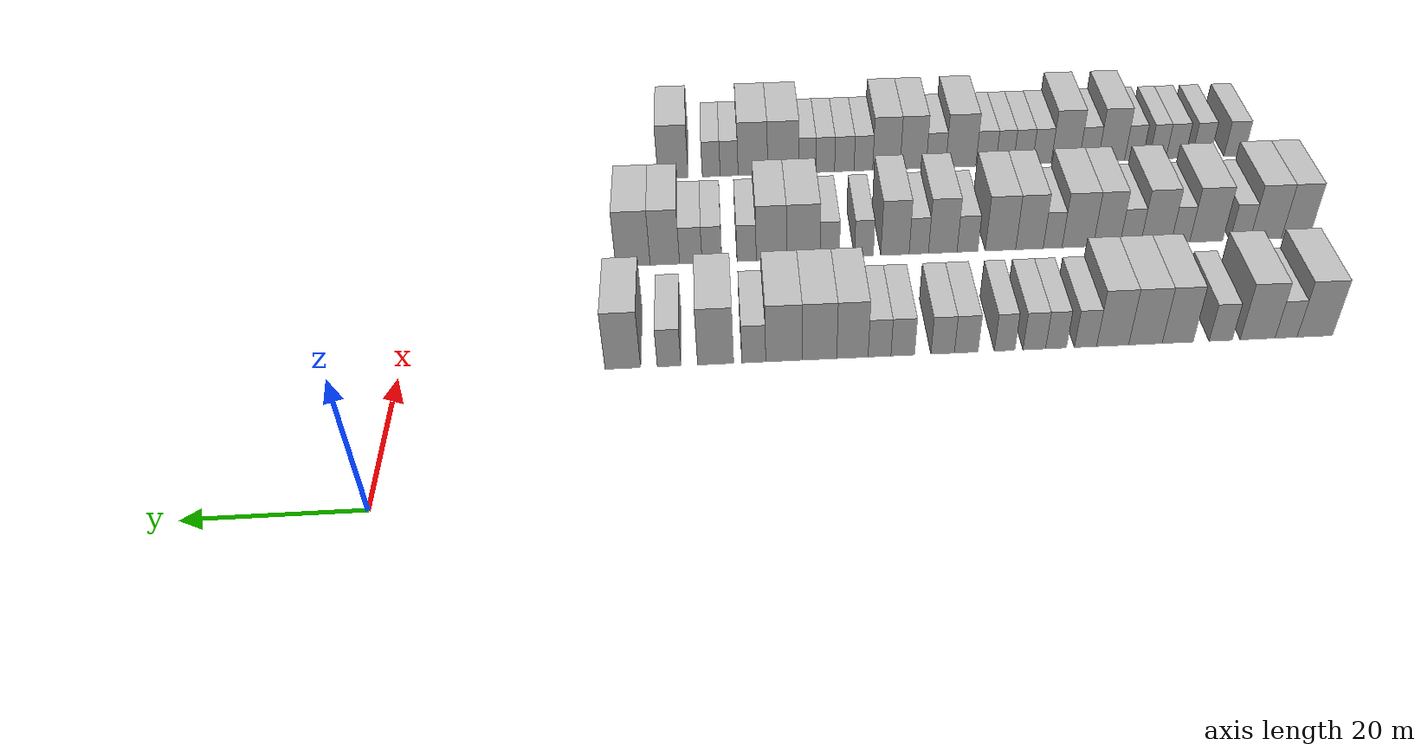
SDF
<sdf version="1.6">
 <world name="default">
  <model name="building_57">
   <static>1</static>
   <pose>25.0000 -111.5398 0 0.000000 0.000000 0.000000</pose>
   <link name="link">
    <pose>0 0 4.50 0 0 0</pose>
    <collision name="collision"><geometry><box><size>10.0000 4.4586 9.0000</size></box></geometry></collision>
    <visual name="visual">
     <cast_shadows>0</cast_shadows>
     <geometry><box><size>10.0000 4.4586 9.0000</size></box></geometry>
     <material>
      <script>
       <uri>model://HANNAS_wall/materials/scripts</uri>
       <uri>model://HANNAS_wall/materials/textures</uri>
       <name>vrc/HANNAS_wall</name>
      </script>
     </material>
    </visual>
   </link>
  </model>
  <model name="building_58">
   <static>1</static>
   <pose>25.0000 -107.9237 0 0.000000 0.000000 0.000000</pose>
   <link name="link">
    <pose>0 0 3.00 0 0 0</pose>
    <collision name="collision"><geometry><box><size>10.0000 2.7735 6.0000</size></box></geometry></collision>
    <visual name="visual">
     <cast_shadows>0</cast_shadows>
     <geometry><box><size>10.0000 2.7735 6.0000</size></box></geometry>
     <material>
      <script>
       <uri>model://HANNAS_wall/materials/scripts</uri>
       <uri>model://HANNAS_wall/materials/textures</uri>
       <name>vrc/HANNAS_wall</name>
      </script>
     </material>
    </visual>
   </link>
  </model>
  <model name="building_59">
   <static>1</static>
   <pose>25.0000 -104.3509 0 0.000000 0.000000 0.000000</pose>
   <link name="link">
    <pose>0 0 4.50 0 0 0</pose>
    <collision name="collision"><geometry><box><size>10.0000 4.3722 9.0000</size></box></geometry></collision>
    <visual name="visual">
     <cast_shadows>0</cast_shadows>
     <geometry><box><size>10.0000 4.3722 9.0000</size></box></geometry>
     <material>
      <script>
       <uri>model://HANNAS_wall/materials/scripts</uri>
       <uri>model://HANNAS_wall/materials/textures</uri>
       <name>vrc/HANNAS_wall</name>
      </script>
     </material>
    </visual>
   </link>
  </model>
  <model name="building_60">
   <static>1</static>
   <pose>25.0000 -99.7212 0 0.000000 0.000000 0.000000</pose>
   <link name="link">
    <pose>0 0 3.00 0 0 0</pose>
    <collision name="collision"><geometry><box><size>10.0000 2.8872 6.0000</size></box></geometry></collision>
    <visual name="visual">
     <cast_shadows>0</cast_shadows>
     <geometry><box><size>10.0000 2.8872 6.0000</size></box></geometry>
     <material>
      <script>
       <uri>model://HANNAS_wall/materials/scripts</uri>
       <uri>model://HANNAS_wall/materials/textures</uri>
       <name>vrc/HANNAS_wall</name>
      </script>
     </material>
    </visual>
   </link>
  </model>
  <model name="building_61">
   <static>1</static>
   <pose>25.0000 -94.3417 0 0.000000 0.000000 0.000000</pose>
   <link name="link">
    <pose>0 0 4.50 0 0 0</pose>
    <collision name="collision"><geometry><box><size>10.0000 3.8718 9.0000</size></box></geometry></collision>
    <visual name="visual">
     <cast_shadows>0</cast_shadows>
     <geometry><box><size>10.0000 3.8718 9.0000</size></box></geometry>
     <material>
      <script>
       <uri>model://HANNAS_wall/materials/scripts</uri>
       <uri>model://HANNAS_wall/materials/textures</uri>
       <name>vrc/HANNAS_wall</name>
      </script>
     </material>
    </visual>
   </link>
  </model>
  <model name="building_62">
   <static>1</static>
   <pose>25.0000 -90.3250 0 0.000000 0.000000 0.000000</pose>
   <link name="link">
    <pose>0 0 4.50 0 0 0</pose>
    <collision name="collision"><geometry><box><size>10.0000 4.1616 9.0000</size></box></geometry></collision>
    <visual name="visual">
     <cast_shadows>0</cast_shadows>
     <geometry><box><size>10.0000 4.1616 9.0000</size></box></geometry>
     <material>
      <script>
       <uri>model://HANNAS_wall/materials/scripts</uri>
       <uri>model://HANNAS_wall/materials/textures</uri>
       <name>vrc/HANNAS_wall</name>
      </script>
     </material>
    </visual>
   </link>
  </model>
  <model name="building_63">
   <static>1</static>
   <pose>25.0000 -86.2522 0 0.000000 0.000000 0.000000</pose>
   <link name="link">
    <pose>0 0 4.50 0 0 0</pose>
    <collision name="collision"><geometry><box><size>10.0000 3.9840 9.0000</size></box></geometry></collision>
    <visual name="visual">
     <cast_shadows>0</cast_shadows>
     <geometry><box><size>10.0000 3.9840 9.0000</size></box></geometry>
     <material>
      <script>
       <uri>model://HANNAS_wall/materials/scripts</uri>
       <uri>model://HANNAS_wall/materials/textures</uri>
       <name>vrc/HANNAS_wall</name>
      </script>
     </material>
    </visual>
   </link>
  </model>
  <model name="building_64">
   <static>1</static>
   <pose>25.0000 -82.8888 0 0.000000 0.000000 0.000000</pose>
   <link name="link">
    <pose>0 0 3.00 0 0 0</pose>
    <collision name="collision"><geometry><box><size>10.0000 2.7428 6.0000</size></box></geometry></collision>
    <visual name="visual">
     <cast_shadows>0</cast_shadows>
     <geometry><box><size>10.0000 2.7428 6.0000</size></box></geometry>
     <material>
      <script>
       <uri>model://HANNAS_wall/materials/scripts</uri>
       <uri>model://HANNAS_wall/materials/textures</uri>
       <name>vrc/HANNAS_wall</name>
      </script>
     </material>
    </visual>
   </link>
  </model>
  <model name="building_65">
   <static>1</static>
   <pose>25.0000 -79.2299 0 0.000000 0.000000 0.000000</pose>
   <link name="link">
    <pose>0 0 3.00 0 0 0</pose>
    <collision name="collision"><geometry><box><size>10.0000 2.5750 6.0000</size></box></geometry></collision>
    <visual name="visual">
     <cast_shadows>0</cast_shadows>
     <geometry><box><size>10.0000 2.5750 6.0000</size></box></geometry>
     <material>
      <script>
       <uri>model://HANNAS_wall/materials/scripts</uri>
       <uri>model://HANNAS_wall/materials/textures</uri>
       <name>vrc/HANNAS_wall</name>
      </script>
     </material>
    </visual>
   </link>
  </model>
  <model name="building_66">
   <static>1</static>
   <pose>25.0000 -76.5491 0 0.000000 0.000000 0.000000</pose>
   <link name="link">
    <pose>0 0 3.00 0 0 0</pose>
    <collision name="collision"><geometry><box><size>10.0000 2.7866 6.0000</size></box></geometry></collision>
    <visual name="visual">
     <cast_shadows>0</cast_shadows>
     <geometry><box><size>10.0000 2.7866 6.0000</size></box></geometry>
     <material>
      <script>
       <uri>model://HANNAS_wall/materials/scripts</uri>
       <uri>model://HANNAS_wall/materials/textures</uri>
       <name>vrc/HANNAS_wall</name>
      </script>
     </material>
    </visual>
   </link>
  </model>
  <model name="building_67">
   <static>1</static>
   <pose>25.0000 -72.8942 0 0.000000 0.000000 0.000000</pose>
   <link name="link">
    <pose>0 0 3.00 0 0 0</pose>
    <collision name="collision"><geometry><box><size>10.0000 2.5231 6.0000</size></box></geometry></collision>
    <visual name="visual">
     <cast_shadows>0</cast_shadows>
     <geometry><box><size>10.0000 2.5231 6.0000</size></box></geometry>
     <material>
      <script>
       <uri>model://HANNAS_wall/materials/scripts</uri>
       <uri>model://HANNAS_wall/materials/textures</uri>
       <name>vrc/HANNAS_wall</name>
      </script>
     </material>
    </visual>
   </link>
  </model>
  <model name="building_68">
   <static>1</static>
   <pose>25.0000 -68.1796 0 0.000000 0.000000 0.000000</pose>
   <link name="link">
    <pose>0 0 3.00 0 0 0</pose>
    <collision name="collision"><geometry><box><size>10.0000 2.9061 6.0000</size></box></geometry></collision>
    <visual name="visual">
     <cast_shadows>0</cast_shadows>
     <geometry><box><size>10.0000 2.9061 6.0000</size></box></geometry>
     <material>
      <script>
       <uri>model://HANNAS_wall/materials/scripts</uri>
       <uri>model://HANNAS_wall/materials/textures</uri>
       <name>vrc/HANNAS_wall</name>
      </script>
     </material>
    </visual>
   </link>
  </model>
  <model name="building_69">
   <static>1</static>
   <pose>25.0000 -65.2922 0 0.000000 0.000000 0.000000</pose>
   <link name="link">
    <pose>0 0 3.00 0 0 0</pose>
    <collision name="collision"><geometry><box><size>10.0000 2.8687 6.0000</size></box></geometry></collision>
    <visual name="visual">
     <cast_shadows>0</cast_shadows>
     <geometry><box><size>10.0000 2.8687 6.0000</size></box></geometry>
     <material>
      <script>
       <uri>model://HANNAS_wall/materials/scripts</uri>
       <uri>model://HANNAS_wall/materials/textures</uri>
       <name>vrc/HANNAS_wall</name>
      </script>
     </material>
    </visual>
   </link>
  </model>
  <model name="building_70">
   <static>1</static>
   <pose>25.0000 -60.4123 0 0.000000 0.000000 0.000000</pose>
   <link name="link">
    <pose>0 0 3.00 0 0 0</pose>
    <collision name="collision"><geometry><box><size>10.0000 2.8911 6.0000</size></box></geometry></collision>
    <visual name="visual">
     <cast_shadows>0</cast_shadows>
     <geometry><box><size>10.0000 2.8911 6.0000</size></box></geometry>
     <material>
      <script>
       <uri>model://HANNAS_wall/materials/scripts</uri>
       <uri>model://HANNAS_wall/materials/textures</uri>
       <name>vrc/HANNAS_wall</name>
      </script>
     </material>
    </visual>
   </link>
  </model>
  <model name="building_71">
   <static>1</static>
   <pose>25.0000 -57.5742 0 0.000000 0.000000 0.000000</pose>
   <link name="link">
    <pose>0 0 3.00 0 0 0</pose>
    <collision name="collision"><geometry><box><size>10.0000 2.7850 6.0000</size></box></geometry></collision>
    <visual name="visual">
     <cast_shadows>0</cast_shadows>
     <geometry><box><size>10.0000 2.7850 6.0000</size></box></geometry>
     <material>
      <script>
       <uri>model://HANNAS_wall/materials/scripts</uri>
       <uri>model://HANNAS_wall/materials/textures</uri>
       <name>vrc/HANNAS_wall</name>
      </script>
     </material>
    </visual>
   </link>
  </model>
  <model name="building_72">
   <static>1</static>
   <pose>25.0000 -54.2720 0 0.000000 0.000000 0.000000</pose>
   <link name="link">
    <pose>0 0 4.50 0 0 0</pose>
    <collision name="collision"><geometry><box><size>10.0000 3.8194 9.0000</size></box></geometry></collision>
    <visual name="visual">
     <cast_shadows>0</cast_shadows>
     <geometry><box><size>10.0000 3.8194 9.0000</size></box></geometry>
     <material>
      <script>
       <uri>model://HANNAS_wall/materials/scripts</uri>
       <uri>model://HANNAS_wall/materials/textures</uri>
       <name>vrc/HANNAS_wall</name>
      </script>
     </material>
    </visual>
   </link>
  </model>
  <model name="building_73">
   <static>1</static>
   <pose>25.0000 -50.2550 0 0.000000 0.000000 0.000000</pose>
   <link name="link">
    <pose>0 0 4.50 0 0 0</pose>
    <collision name="collision"><geometry><box><size>10.0000 4.2145 9.0000</size></box></geometry></collision>
    <visual name="visual">
     <cast_shadows>0</cast_shadows>
     <geometry><box><size>10.0000 4.2145 9.0000</size></box></geometry>
     <material>
      <script>
       <uri>model://HANNAS_wall/materials/scripts</uri>
       <uri>model://HANNAS_wall/materials/textures</uri>
       <name>vrc/HANNAS_wall</name>
      </script>
     </material>
    </visual>
   </link>
  </model>
  <model name="building_74">
   <static>1</static>
   <pose>25.0000 -45.9555 0 0.000000 0.000000 0.000000</pose>
   <link name="link">
    <pose>0 0 4.50 0 0 0</pose>
    <collision name="collision"><geometry><box><size>10.0000 4.3845 9.0000</size></box></geometry></collision>
    <visual name="visual">
     <cast_shadows>0</cast_shadows>
     <geometry><box><size>10.0000 4.3845 9.0000</size></box></geometry>
     <material>
      <script>
       <uri>model://HANNAS_wall/materials/scripts</uri>
       <uri>model://HANNAS_wall/materials/textures</uri>
       <name>vrc/HANNAS_wall</name>
      </script>
     </material>
    </visual>
   </link>
  </model>
  <model name="building_75">
   <static>1</static>
   <pose>25.0000 -42.3264 0 0.000000 0.000000 0.000000</pose>
   <link name="link">
    <pose>0 0 3.00 0 0 0</pose>
    <collision name="collision"><geometry><box><size>10.0000 2.8739 6.0000</size></box></geometry></collision>
    <visual name="visual">
     <cast_shadows>0</cast_shadows>
     <geometry><box><size>10.0000 2.8739 6.0000</size></box></geometry>
     <material>
      <script>
       <uri>model://HANNAS_wall/materials/scripts</uri>
       <uri>model://HANNAS_wall/materials/textures</uri>
       <name>vrc/HANNAS_wall</name>
      </script>
     </material>
    </visual>
   </link>
  </model>
  <model name="building_76">
   <static>1</static>
   <pose>25.0000 -37.7238 0 0.000000 0.000000 0.000000</pose>
   <link name="link">
    <pose>0 0 4.50 0 0 0</pose>
    <collision name="collision"><geometry><box><size>10.0000 4.3312 9.0000</size></box></geometry></collision>
    <visual name="visual">
     <cast_shadows>0</cast_shadows>
     <geometry><box><size>10.0000 4.3312 9.0000</size></box></geometry>
     <material>
      <script>
       <uri>model://HANNAS_wall/materials/scripts</uri>
       <uri>model://HANNAS_wall/materials/textures</uri>
       <name>vrc/HANNAS_wall</name>
      </script>
     </material>
    </visual>
   </link>
  </model>
  <model name="building_77">
   <static>1</static>
   <pose>25.0000 -32.1401 0 0.000000 0.000000 0.000000</pose>
   <link name="link">
    <pose>0 0 3.00 0 0 0</pose>
    <collision name="collision"><geometry><box><size>10.0000 2.8362 6.0000</size></box></geometry></collision>
    <visual name="visual">
     <cast_shadows>0</cast_shadows>
     <geometry><box><size>10.0000 2.8362 6.0000</size></box></geometry>
     <material>
      <script>
       <uri>model://HANNAS_wall/materials/scripts</uri>
       <uri>model://HANNAS_wall/materials/textures</uri>
       <name>vrc/HANNAS_wall</name>
      </script>
     </material>
    </visual>
   </link>
  </model>
  <model name="building_78">
   <static>1</static>
   <pose>25.0000 -26.5980 0 0.000000 0.000000 0.000000</pose>
   <link name="link">
    <pose>0 0 4.50 0 0 0</pose>
    <collision name="collision"><geometry><box><size>10.0000 4.2480 9.0000</size></box></geometry></collision>
    <visual name="visual">
     <cast_shadows>0</cast_shadows>
     <geometry><box><size>10.0000 4.2480 9.0000</size></box></geometry>
     <material>
      <script>
       <uri>model://HANNAS_wall/materials/scripts</uri>
       <uri>model://HANNAS_wall/materials/textures</uri>
       <name>vrc/HANNAS_wall</name>
      </script>
     </material>
    </visual>
   </link>
  </model>
  <model name="building_236">
   <static>1</static>
   <pose>44.0000 -115.9924 0 0.000000 0.000000 0.000000</pose>
   <link name="link">
    <pose>0 0 4.50 0 0 0</pose>
    <collision name="collision"><geometry><box><size>10.0000 3.8471 9.0000</size></box></geometry></collision>
    <visual name="visual">
     <cast_shadows>0</cast_shadows>
     <geometry><box><size>10.0000 3.8471 9.0000</size></box></geometry>
     <material>
      <script>
       <uri>model://HANNAS_wall/materials/scripts</uri>
       <uri>model://HANNAS_wall/materials/textures</uri>
       <name>vrc/HANNAS_wall</name>
      </script>
     </material>
    </visual>
   </link>
  </model>
  <model name="building_237">
   <static>1</static>
   <pose>44.0000 -111.9209 0 0.000000 0.000000 0.000000</pose>
   <link name="link">
    <pose>0 0 4.50 0 0 0</pose>
    <collision name="collision"><geometry><box><size>10.0000 4.2960 9.0000</size></box></geometry></collision>
    <visual name="visual">
     <cast_shadows>0</cast_shadows>
     <geometry><box><size>10.0000 4.2960 9.0000</size></box></geometry>
     <material>
      <script>
       <uri>model://HANNAS_wall/materials/scripts</uri>
       <uri>model://HANNAS_wall/materials/textures</uri>
       <name>vrc/HANNAS_wall</name>
      </script>
     </material>
    </visual>
   </link>
  </model>
  <model name="building_238">
   <static>1</static>
   <pose>44.0000 -108.3996 0 0.000000 0.000000 0.000000</pose>
   <link name="link">
    <pose>0 0 3.00 0 0 0</pose>
    <collision name="collision"><geometry><box><size>10.0000 2.7466 6.0000</size></box></geometry></collision>
    <visual name="visual">
     <cast_shadows>0</cast_shadows>
     <geometry><box><size>10.0000 2.7466 6.0000</size></box></geometry>
     <material>
      <script>
       <uri>model://HANNAS_wall/materials/scripts</uri>
       <uri>model://HANNAS_wall/materials/textures</uri>
       <name>vrc/HANNAS_wall</name>
      </script>
     </material>
    </visual>
   </link>
  </model>
  <model name="building_239">
   <static>1</static>
   <pose>44.0000 -103.7807 0 0.000000 0.000000 0.000000</pose>
   <link name="link">
    <pose>0 0 4.50 0 0 0</pose>
    <collision name="collision"><geometry><box><size>10.0000 4.4910 9.0000</size></box></geometry></collision>
    <visual name="visual">
     <cast_shadows>0</cast_shadows>
     <geometry><box><size>10.0000 4.4910 9.0000</size></box></geometry>
     <material>
      <script>
       <uri>model://HANNAS_wall/materials/scripts</uri>
       <uri>model://HANNAS_wall/materials/textures</uri>
       <name>vrc/HANNAS_wall</name>
      </script>
     </material>
    </visual>
   </link>
  </model>
  <model name="building_240">
   <static>1</static>
   <pose>44.0000 -100.2706 0 0.000000 0.000000 0.000000</pose>
   <link name="link">
    <pose>0 0 3.00 0 0 0</pose>
    <collision name="collision"><geometry><box><size>10.0000 2.5293 6.0000</size></box></geometry></collision>
    <visual name="visual">
     <cast_shadows>0</cast_shadows>
     <geometry><box><size>10.0000 2.5293 6.0000</size></box></geometry>
     <material>
      <script>
       <uri>model://HANNAS_wall/materials/scripts</uri>
       <uri>model://HANNAS_wall/materials/textures</uri>
       <name>vrc/HANNAS_wall</name>
      </script>
     </material>
    </visual>
   </link>
  </model>
  <model name="building_241">
   <static>1</static>
   <pose>44.0000 -96.9319 0 0.000000 0.000000 0.000000</pose>
   <link name="link">
    <pose>0 0 4.50 0 0 0</pose>
    <collision name="collision"><geometry><box><size>10.0000 4.1479 9.0000</size></box></geometry></collision>
    <visual name="visual">
     <cast_shadows>0</cast_shadows>
     <geometry><box><size>10.0000 4.1479 9.0000</size></box></geometry>
     <material>
      <script>
       <uri>model://HANNAS_wall/materials/scripts</uri>
       <uri>model://HANNAS_wall/materials/textures</uri>
       <name>vrc/HANNAS_wall</name>
      </script>
     </material>
    </visual>
   </link>
  </model>
  <model name="building_242">
   <static>1</static>
   <pose>44.0000 -93.4488 0 0.000000 0.000000 0.000000</pose>
   <link name="link">
    <pose>0 0 3.00 0 0 0</pose>
    <collision name="collision"><geometry><box><size>10.0000 2.8184 6.0000</size></box></geometry></collision>
    <visual name="visual">
     <cast_shadows>0</cast_shadows>
     <geometry><box><size>10.0000 2.8184 6.0000</size></box></geometry>
     <material>
      <script>
       <uri>model://HANNAS_wall/materials/scripts</uri>
       <uri>model://HANNAS_wall/materials/textures</uri>
       <name>vrc/HANNAS_wall</name>
      </script>
     </material>
    </visual>
   </link>
  </model>
  <model name="building_243">
   <static>1</static>
   <pose>44.0000 -90.2383 0 0.000000 0.000000 0.000000</pose>
   <link name="link">
    <pose>0 0 4.50 0 0 0</pose>
    <collision name="collision"><geometry><box><size>10.0000 3.6025 9.0000</size></box></geometry></collision>
    <visual name="visual">
     <cast_shadows>0</cast_shadows>
     <geometry><box><size>10.0000 3.6025 9.0000</size></box></geometry>
     <material>
      <script>
       <uri>model://HANNAS_wall/materials/scripts</uri>
       <uri>model://HANNAS_wall/materials/textures</uri>
       <name>vrc/HANNAS_wall</name>
      </script>
     </material>
    </visual>
   </link>
  </model>
  <model name="building_244">
   <static>1</static>
   <pose>44.0000 -86.3319 0 0.000000 0.000000 0.000000</pose>
   <link name="link">
    <pose>0 0 4.50 0 0 0</pose>
    <collision name="collision"><geometry><box><size>10.0000 4.2104 9.0000</size></box></geometry></collision>
    <visual name="visual">
     <cast_shadows>0</cast_shadows>
     <geometry><box><size>10.0000 4.2104 9.0000</size></box></geometry>
     <material>
      <script>
       <uri>model://HANNAS_wall/materials/scripts</uri>
       <uri>model://HANNAS_wall/materials/textures</uri>
       <name>vrc/HANNAS_wall</name>
      </script>
     </material>
    </visual>
   </link>
  </model>
  <model name="building_245">
   <static>1</static>
   <pose>44.0000 -82.9578 0 0.000000 0.000000 0.000000</pose>
   <link name="link">
    <pose>0 0 3.00 0 0 0</pose>
    <collision name="collision"><geometry><box><size>10.0000 2.5377 6.0000</size></box></geometry></collision>
    <visual name="visual">
     <cast_shadows>0</cast_shadows>
     <geometry><box><size>10.0000 2.5377 6.0000</size></box></geometry>
     <material>
      <script>
       <uri>model://HANNAS_wall/materials/scripts</uri>
       <uri>model://HANNAS_wall/materials/textures</uri>
       <name>vrc/HANNAS_wall</name>
      </script>
     </material>
    </visual>
   </link>
  </model>
  <model name="building_246">
   <static>1</static>
   <pose>44.0000 -79.8352 0 0.000000 0.000000 0.000000</pose>
   <link name="link">
    <pose>0 0 4.50 0 0 0</pose>
    <collision name="collision"><geometry><box><size>10.0000 3.7076 9.0000</size></box></geometry></collision>
    <visual name="visual">
     <cast_shadows>0</cast_shadows>
     <geometry><box><size>10.0000 3.7076 9.0000</size></box></geometry>
     <material>
      <script>
       <uri>model://HANNAS_wall/materials/scripts</uri>
       <uri>model://HANNAS_wall/materials/textures</uri>
       <name>vrc/HANNAS_wall</name>
      </script>
     </material>
    </visual>
   </link>
  </model>
  <model name="building_247">
   <static>1</static>
   <pose>44.0000 -75.9427 0 0.000000 0.000000 0.000000</pose>
   <link name="link">
    <pose>0 0 4.50 0 0 0</pose>
    <collision name="collision"><geometry><box><size>10.0000 4.0775 9.0000</size></box></geometry></collision>
    <visual name="visual">
     <cast_shadows>0</cast_shadows>
     <geometry><box><size>10.0000 4.0775 9.0000</size></box></geometry>
     <material>
      <script>
       <uri>model://HANNAS_wall/materials/scripts</uri>
       <uri>model://HANNAS_wall/materials/textures</uri>
       <name>vrc/HANNAS_wall</name>
      </script>
     </material>
    </visual>
   </link>
  </model>
  <model name="building_248">
   <static>1</static>
   <pose>44.0000 -71.5139 0 0.000000 0.000000 0.000000</pose>
   <link name="link">
    <pose>0 0 3.00 0 0 0</pose>
    <collision name="collision"><geometry><box><size>10.0000 2.7801 6.0000</size></box></geometry></collision>
    <visual name="visual">
     <cast_shadows>0</cast_shadows>
     <geometry><box><size>10.0000 2.7801 6.0000</size></box></geometry>
     <material>
      <script>
       <uri>model://HANNAS_wall/materials/scripts</uri>
       <uri>model://HANNAS_wall/materials/textures</uri>
       <name>vrc/HANNAS_wall</name>
      </script>
     </material>
    </visual>
   </link>
  </model>
  <model name="building_249">
   <static>1</static>
   <pose>44.0000 -68.2118 0 0.000000 0.000000 0.000000</pose>
   <link name="link">
    <pose>0 0 4.50 0 0 0</pose>
    <collision name="collision"><geometry><box><size>10.0000 3.8239 9.0000</size></box></geometry></collision>
    <visual name="visual">
     <cast_shadows>0</cast_shadows>
     <geometry><box><size>10.0000 3.8239 9.0000</size></box></geometry>
     <material>
      <script>
       <uri>model://HANNAS_wall/materials/scripts</uri>
       <uri>model://HANNAS_wall/materials/textures</uri>
       <name>vrc/HANNAS_wall</name>
      </script>
     </material>
    </visual>
   </link>
  </model>
  <model name="building_250">
   <static>1</static>
   <pose>44.0000 -65.0144 0 0.000000 0.000000 0.000000</pose>
   <link name="link">
    <pose>0 0 3.00 0 0 0</pose>
    <collision name="collision"><geometry><box><size>10.0000 2.5710 6.0000</size></box></geometry></collision>
    <visual name="visual">
     <cast_shadows>0</cast_shadows>
     <geometry><box><size>10.0000 2.5710 6.0000</size></box></geometry>
     <material>
      <script>
       <uri>model://HANNAS_wall/materials/scripts</uri>
       <uri>model://HANNAS_wall/materials/textures</uri>
       <name>vrc/HANNAS_wall</name>
      </script>
     </material>
    </visual>
   </link>
  </model>
  <model name="building_251">
   <static>1</static>
   <pose>44.0000 -61.8440 0 0.000000 0.000000 0.000000</pose>
   <link name="link">
    <pose>0 0 4.50 0 0 0</pose>
    <collision name="collision"><geometry><box><size>10.0000 3.7696 9.0000</size></box></geometry></collision>
    <visual name="visual">
     <cast_shadows>0</cast_shadows>
     <geometry><box><size>10.0000 3.7696 9.0000</size></box></geometry>
     <material>
      <script>
       <uri>model://HANNAS_wall/materials/scripts</uri>
       <uri>model://HANNAS_wall/materials/textures</uri>
       <name>vrc/HANNAS_wall</name>
      </script>
     </material>
    </visual>
   </link>
  </model>
  <model name="building_252">
   <static>1</static>
   <pose>44.0000 -57.7068 0 0.000000 0.000000 0.000000</pose>
   <link name="link">
    <pose>0 0 3.00 0 0 0</pose>
    <collision name="collision"><geometry><box><size>10.0000 2.5049 6.0000</size></box></geometry></collision>
    <visual name="visual">
     <cast_shadows>0</cast_shadows>
     <geometry><box><size>10.0000 2.5049 6.0000</size></box></geometry>
     <material>
      <script>
       <uri>model://HANNAS_wall/materials/scripts</uri>
       <uri>model://HANNAS_wall/materials/textures</uri>
       <name>vrc/HANNAS_wall</name>
      </script>
     </material>
    </visual>
   </link>
  </model>
  <model name="building_253">
   <static>1</static>
   <pose>44.0000 -53.1735 0 0.000000 0.000000 0.000000</pose>
   <link name="link">
    <pose>0 0 3.00 0 0 0</pose>
    <collision name="collision"><geometry><box><size>10.0000 2.5617 6.0000</size></box></geometry></collision>
    <visual name="visual">
     <cast_shadows>0</cast_shadows>
     <geometry><box><size>10.0000 2.5617 6.0000</size></box></geometry>
     <material>
      <script>
       <uri>model://HANNAS_wall/materials/scripts</uri>
       <uri>model://HANNAS_wall/materials/textures</uri>
       <name>vrc/HANNAS_wall</name>
      </script>
     </material>
    </visual>
   </link>
  </model>
  <model name="building_254">
   <static>1</static>
   <pose>44.0000 -49.6781 0 0.000000 0.000000 0.000000</pose>
   <link name="link">
    <pose>0 0 4.50 0 0 0</pose>
    <collision name="collision"><geometry><box><size>10.0000 4.4290 9.0000</size></box></geometry></collision>
    <visual name="visual">
     <cast_shadows>0</cast_shadows>
     <geometry><box><size>10.0000 4.4290 9.0000</size></box></geometry>
     <material>
      <script>
       <uri>model://HANNAS_wall/materials/scripts</uri>
       <uri>model://HANNAS_wall/materials/textures</uri>
       <name>vrc/HANNAS_wall</name>
      </script>
     </material>
    </visual>
   </link>
  </model>
  <model name="building_255">
   <static>1</static>
   <pose>44.0000 -45.4736 0 0.000000 0.000000 0.000000</pose>
   <link name="link">
    <pose>0 0 4.50 0 0 0</pose>
    <collision name="collision"><geometry><box><size>10.0000 3.9800 9.0000</size></box></geometry></collision>
    <visual name="visual">
     <cast_shadows>0</cast_shadows>
     <geometry><box><size>10.0000 3.9800 9.0000</size></box></geometry>
     <material>
      <script>
       <uri>model://HANNAS_wall/materials/scripts</uri>
       <uri>model://HANNAS_wall/materials/textures</uri>
       <name>vrc/HANNAS_wall</name>
      </script>
     </material>
    </visual>
   </link>
  </model>
  <model name="building_256">
   <static>1</static>
   <pose>44.0000 -42.2209 0 0.000000 0.000000 0.000000</pose>
   <link name="link">
    <pose>0 0 3.00 0 0 0</pose>
    <collision name="collision"><geometry><box><size>10.0000 2.5255 6.0000</size></box></geometry></collision>
    <visual name="visual">
     <cast_shadows>0</cast_shadows>
     <geometry><box><size>10.0000 2.5255 6.0000</size></box></geometry>
     <material>
      <script>
       <uri>model://HANNAS_wall/materials/scripts</uri>
       <uri>model://HANNAS_wall/materials/textures</uri>
       <name>vrc/HANNAS_wall</name>
      </script>
     </material>
    </visual>
   </link>
  </model>
  <model name="building_257">
   <static>1</static>
   <pose>44.0000 -37.6571 0 0.000000 0.000000 0.000000</pose>
   <link name="link">
    <pose>0 0 3.00 0 0 0</pose>
    <collision name="collision"><geometry><box><size>10.0000 2.6021 6.0000</size></box></geometry></collision>
    <visual name="visual">
     <cast_shadows>0</cast_shadows>
     <geometry><box><size>10.0000 2.6021 6.0000</size></box></geometry>
     <material>
      <script>
       <uri>model://HANNAS_wall/materials/scripts</uri>
       <uri>model://HANNAS_wall/materials/textures</uri>
       <name>vrc/HANNAS_wall</name>
      </script>
     </material>
    </visual>
   </link>
  </model>
  <model name="building_258">
   <static>1</static>
   <pose>44.0000 -34.8830 0 0.000000 0.000000 0.000000</pose>
   <link name="link">
    <pose>0 0 3.00 0 0 0</pose>
    <collision name="collision"><geometry><box><size>10.0000 2.9463 6.0000</size></box></geometry></collision>
    <visual name="visual">
     <cast_shadows>0</cast_shadows>
     <geometry><box><size>10.0000 2.9463 6.0000</size></box></geometry>
     <material>
      <script>
       <uri>model://HANNAS_wall/materials/scripts</uri>
       <uri>model://HANNAS_wall/materials/textures</uri>
       <name>vrc/HANNAS_wall</name>
      </script>
     </material>
    </visual>
   </link>
  </model>
  <model name="building_259">
   <static>1</static>
   <pose>44.0000 -31.4919 0 0.000000 0.000000 0.000000</pose>
   <link name="link">
    <pose>0 0 4.50 0 0 0</pose>
    <collision name="collision"><geometry><box><size>10.0000 3.8358 9.0000</size></box></geometry></collision>
    <visual name="visual">
     <cast_shadows>0</cast_shadows>
     <geometry><box><size>10.0000 3.8358 9.0000</size></box></geometry>
     <material>
      <script>
       <uri>model://HANNAS_wall/materials/scripts</uri>
       <uri>model://HANNAS_wall/materials/textures</uri>
       <name>vrc/HANNAS_wall</name>
      </script>
     </material>
    </visual>
   </link>
  </model>
  <model name="building_260">
   <static>1</static>
   <pose>44.0000 -27.3304 0 0.000000 0.000000 0.000000</pose>
   <link name="link">
    <pose>0 0 4.50 0 0 0</pose>
    <collision name="collision"><geometry><box><size>10.0000 4.4872 9.0000</size></box></geometry></collision>
    <visual name="visual">
     <cast_shadows>0</cast_shadows>
     <geometry><box><size>10.0000 4.4872 9.0000</size></box></geometry>
     <material>
      <script>
       <uri>model://HANNAS_wall/materials/scripts</uri>
       <uri>model://HANNAS_wall/materials/textures</uri>
       <name>vrc/HANNAS_wall</name>
      </script>
     </material>
    </visual>
   </link>
  </model>
  <model name="building_414">
   <static>1</static>
   <pose>63.0000 -113.7765 0 0.000000 0.000000 0.000000</pose>
   <link name="link">
    <pose>0 0 3.00 0 0 0</pose>
    <collision name="collision"><geometry><box><size>10.0000 2.9754 6.0000</size></box></geometry></collision>
    <visual name="visual">
     <cast_shadows>0</cast_shadows>
     <geometry><box><size>10.0000 2.9754 6.0000</size></box></geometry>
     <material>
      <script>
       <uri>model://HANNAS_wall/materials/scripts</uri>
       <uri>model://HANNAS_wall/materials/textures</uri>
       <name>vrc/HANNAS_wall</name>
      </script>
     </material>
    </visual>
   </link>
  </model>
  <model name="building_415">
   <static>1</static>
   <pose>63.0000 -108.9122 0 0.000000 0.000000 0.000000</pose>
   <link name="link">
    <pose>0 0 3.00 0 0 0</pose>
    <collision name="collision"><geometry><box><size>10.0000 2.7532 6.0000</size></box></geometry></collision>
    <visual name="visual">
     <cast_shadows>0</cast_shadows>
     <geometry><box><size>10.0000 2.7532 6.0000</size></box></geometry>
     <material>
      <script>
       <uri>model://HANNAS_wall/materials/scripts</uri>
       <uri>model://HANNAS_wall/materials/textures</uri>
       <name>vrc/HANNAS_wall</name>
      </script>
     </material>
    </visual>
   </link>
  </model>
  <model name="building_416">
   <static>1</static>
   <pose>63.0000 -105.1265 0 0.000000 0.000000 0.000000</pose>
   <link name="link">
    <pose>0 0 3.00 0 0 0</pose>
    <collision name="collision"><geometry><box><size>10.0000 2.8181 6.0000</size></box></geometry></collision>
    <visual name="visual">
     <cast_shadows>0</cast_shadows>
     <geometry><box><size>10.0000 2.8181 6.0000</size></box></geometry>
     <material>
      <script>
       <uri>model://HANNAS_wall/materials/scripts</uri>
       <uri>model://HANNAS_wall/materials/textures</uri>
       <name>vrc/HANNAS_wall</name>
      </script>
     </material>
    </visual>
   </link>
  </model>
  <model name="building_417">
   <static>1</static>
   <pose>63.0000 -102.4963 0 0.000000 0.000000 0.000000</pose>
   <link name="link">
    <pose>0 0 3.00 0 0 0</pose>
    <collision name="collision"><geometry><box><size>10.0000 2.4423 6.0000</size></box></geometry></collision>
    <visual name="visual">
     <cast_shadows>0</cast_shadows>
     <geometry><box><size>10.0000 2.4423 6.0000</size></box></geometry>
     <material>
      <script>
       <uri>model://HANNAS_wall/materials/scripts</uri>
       <uri>model://HANNAS_wall/materials/textures</uri>
       <name>vrc/HANNAS_wall</name>
      </script>
     </material>
    </visual>
   </link>
  </model>
  <model name="building_418">
   <static>1</static>
   <pose>63.0000 -98.9543 0 0.000000 0.000000 0.000000</pose>
   <link name="link">
    <pose>0 0 3.00 0 0 0</pose>
    <collision name="collision"><geometry><box><size>10.0000 2.6418 6.0000</size></box></geometry></collision>
    <visual name="visual">
     <cast_shadows>0</cast_shadows>
     <geometry><box><size>10.0000 2.6418 6.0000</size></box></geometry>
     <material>
      <script>
       <uri>model://HANNAS_wall/materials/scripts</uri>
       <uri>model://HANNAS_wall/materials/textures</uri>
       <name>vrc/HANNAS_wall</name>
      </script>
     </material>
    </visual>
   </link>
  </model>
  <model name="building_419">
   <static>1</static>
   <pose>63.0000 -95.6910 0 0.000000 0.000000 0.000000</pose>
   <link name="link">
    <pose>0 0 4.50 0 0 0</pose>
    <collision name="collision"><geometry><box><size>10.0000 3.8847 9.0000</size></box></geometry></collision>
    <visual name="visual">
     <cast_shadows>0</cast_shadows>
     <geometry><box><size>10.0000 3.8847 9.0000</size></box></geometry>
     <material>
      <script>
       <uri>model://HANNAS_wall/materials/scripts</uri>
       <uri>model://HANNAS_wall/materials/textures</uri>
       <name>vrc/HANNAS_wall</name>
      </script>
     </material>
    </visual>
   </link>
  </model>
  <model name="building_420">
   <static>1</static>
   <pose>63.0000 -92.3587 0 0.000000 0.000000 0.000000</pose>
   <link name="link">
    <pose>0 0 3.00 0 0 0</pose>
    <collision name="collision"><geometry><box><size>10.0000 2.7800 6.0000</size></box></geometry></collision>
    <visual name="visual">
     <cast_shadows>0</cast_shadows>
     <geometry><box><size>10.0000 2.7800 6.0000</size></box></geometry>
     <material>
      <script>
       <uri>model://HANNAS_wall/materials/scripts</uri>
       <uri>model://HANNAS_wall/materials/textures</uri>
       <name>vrc/HANNAS_wall</name>
      </script>
     </material>
    </visual>
   </link>
  </model>
  <model name="building_421">
   <static>1</static>
   <pose>63.0000 -88.9291 0 0.000000 0.000000 0.000000</pose>
   <link name="link">
    <pose>0 0 4.50 0 0 0</pose>
    <collision name="collision"><geometry><box><size>10.0000 4.0792 9.0000</size></box></geometry></collision>
    <visual name="visual">
     <cast_shadows>0</cast_shadows>
     <geometry><box><size>10.0000 4.0792 9.0000</size></box></geometry>
     <material>
      <script>
       <uri>model://HANNAS_wall/materials/scripts</uri>
       <uri>model://HANNAS_wall/materials/textures</uri>
       <name>vrc/HANNAS_wall</name>
      </script>
     </material>
    </visual>
   </link>
  </model>
  <model name="building_422">
   <static>1</static>
   <pose>63.0000 -85.5236 0 0.000000 0.000000 0.000000</pose>
   <link name="link">
    <pose>0 0 3.00 0 0 0</pose>
    <collision name="collision"><geometry><box><size>10.0000 2.7317 6.0000</size></box></geometry></collision>
    <visual name="visual">
     <cast_shadows>0</cast_shadows>
     <geometry><box><size>10.0000 2.7317 6.0000</size></box></geometry>
     <material>
      <script>
       <uri>model://HANNAS_wall/materials/scripts</uri>
       <uri>model://HANNAS_wall/materials/textures</uri>
       <name>vrc/HANNAS_wall</name>
      </script>
     </material>
    </visual>
   </link>
  </model>
  <model name="building_423">
   <static>1</static>
   <pose>63.0000 -82.7807 0 0.000000 0.000000 0.000000</pose>
   <link name="link">
    <pose>0 0 3.00 0 0 0</pose>
    <collision name="collision"><geometry><box><size>10.0000 2.7540 6.0000</size></box></geometry></collision>
    <visual name="visual">
     <cast_shadows>0</cast_shadows>
     <geometry><box><size>10.0000 2.7540 6.0000</size></box></geometry>
     <material>
      <script>
       <uri>model://HANNAS_wall/materials/scripts</uri>
       <uri>model://HANNAS_wall/materials/textures</uri>
       <name>vrc/HANNAS_wall</name>
      </script>
     </material>
    </visual>
   </link>
  </model>
  <model name="building_424">
   <static>1</static>
   <pose>63.0000 -80.1212 0 0.000000 0.000000 0.000000</pose>
   <link name="link">
    <pose>0 0 3.00 0 0 0</pose>
    <collision name="collision"><geometry><box><size>10.0000 2.5650 6.0000</size></box></geometry></collision>
    <visual name="visual">
     <cast_shadows>0</cast_shadows>
     <geometry><box><size>10.0000 2.5650 6.0000</size></box></geometry>
     <material>
      <script>
       <uri>model://HANNAS_wall/materials/scripts</uri>
       <uri>model://HANNAS_wall/materials/textures</uri>
       <name>vrc/HANNAS_wall</name>
      </script>
     </material>
    </visual>
   </link>
  </model>
  <model name="building_425">
   <static>1</static>
   <pose>63.0000 -77.3837 0 0.000000 0.000000 0.000000</pose>
   <link name="link">
    <pose>0 0 3.00 0 0 0</pose>
    <collision name="collision"><geometry><box><size>10.0000 2.9099 6.0000</size></box></geometry></collision>
    <visual name="visual">
     <cast_shadows>0</cast_shadows>
     <geometry><box><size>10.0000 2.9099 6.0000</size></box></geometry>
     <material>
      <script>
       <uri>model://HANNAS_wall/materials/scripts</uri>
       <uri>model://HANNAS_wall/materials/textures</uri>
       <name>vrc/HANNAS_wall</name>
      </script>
     </material>
    </visual>
   </link>
  </model>
  <model name="building_426">
   <static>1</static>
   <pose>63.0000 -73.7387 0 0.000000 0.000000 0.000000</pose>
   <link name="link">
    <pose>0 0 4.50 0 0 0</pose>
    <collision name="collision"><geometry><box><size>10.0000 4.3801 9.0000</size></box></geometry></collision>
    <visual name="visual">
     <cast_shadows>0</cast_shadows>
     <geometry><box><size>10.0000 4.3801 9.0000</size></box></geometry>
     <material>
      <script>
       <uri>model://HANNAS_wall/materials/scripts</uri>
       <uri>model://HANNAS_wall/materials/textures</uri>
       <name>vrc/HANNAS_wall</name>
      </script>
     </material>
    </visual>
   </link>
  </model>
  <model name="building_427">
   <static>1</static>
   <pose>63.0000 -70.1336 0 0.000000 0.000000 0.000000</pose>
   <link name="link">
    <pose>0 0 3.00 0 0 0</pose>
    <collision name="collision"><geometry><box><size>10.0000 2.8301 6.0000</size></box></geometry></collision>
    <visual name="visual">
     <cast_shadows>0</cast_shadows>
     <geometry><box><size>10.0000 2.8301 6.0000</size></box></geometry>
     <material>
      <script>
       <uri>model://HANNAS_wall/materials/scripts</uri>
       <uri>model://HANNAS_wall/materials/textures</uri>
       <name>vrc/HANNAS_wall</name>
      </script>
     </material>
    </visual>
   </link>
  </model>
  <model name="building_428">
   <static>1</static>
   <pose>63.0000 -66.8413 0 0.000000 0.000000 0.000000</pose>
   <link name="link">
    <pose>0 0 4.50 0 0 0</pose>
    <collision name="collision"><geometry><box><size>10.0000 3.7546 9.0000</size></box></geometry></collision>
    <visual name="visual">
     <cast_shadows>0</cast_shadows>
     <geometry><box><size>10.0000 3.7546 9.0000</size></box></geometry>
     <material>
      <script>
       <uri>model://HANNAS_wall/materials/scripts</uri>
       <uri>model://HANNAS_wall/materials/textures</uri>
       <name>vrc/HANNAS_wall</name>
      </script>
     </material>
    </visual>
   </link>
  </model>
  <model name="building_429">
   <static>1</static>
   <pose>63.0000 -62.9925 0 0.000000 0.000000 0.000000</pose>
   <link name="link">
    <pose>0 0 4.50 0 0 0</pose>
    <collision name="collision"><geometry><box><size>10.0000 3.9429 9.0000</size></box></geometry></collision>
    <visual name="visual">
     <cast_shadows>0</cast_shadows>
     <geometry><box><size>10.0000 3.9429 9.0000</size></box></geometry>
     <material>
      <script>
       <uri>model://HANNAS_wall/materials/scripts</uri>
       <uri>model://HANNAS_wall/materials/textures</uri>
       <name>vrc/HANNAS_wall</name>
      </script>
     </material>
    </visual>
   </link>
  </model>
  <model name="building_430">
   <static>1</static>
   <pose>63.0000 -59.6779 0 0.000000 0.000000 0.000000</pose>
   <link name="link">
    <pose>0 0 3.00 0 0 0</pose>
    <collision name="collision"><geometry><box><size>10.0000 2.6865 6.0000</size></box></geometry></collision>
    <visual name="visual">
     <cast_shadows>0</cast_shadows>
     <geometry><box><size>10.0000 2.6865 6.0000</size></box></geometry>
     <material>
      <script>
       <uri>model://HANNAS_wall/materials/scripts</uri>
       <uri>model://HANNAS_wall/materials/textures</uri>
       <name>vrc/HANNAS_wall</name>
      </script>
     </material>
    </visual>
   </link>
  </model>
  <model name="building_431">
   <static>1</static>
   <pose>63.0000 -56.9377 0 0.000000 0.000000 0.000000</pose>
   <link name="link">
    <pose>0 0 3.00 0 0 0</pose>
    <collision name="collision"><geometry><box><size>10.0000 2.7938 6.0000</size></box></geometry></collision>
    <visual name="visual">
     <cast_shadows>0</cast_shadows>
     <geometry><box><size>10.0000 2.7938 6.0000</size></box></geometry>
     <material>
      <script>
       <uri>model://HANNAS_wall/materials/scripts</uri>
       <uri>model://HANNAS_wall/materials/textures</uri>
       <name>vrc/HANNAS_wall</name>
      </script>
     </material>
    </visual>
   </link>
  </model>
  <model name="building_432">
   <static>1</static>
   <pose>63.0000 -54.2069 0 0.000000 0.000000 0.000000</pose>
   <link name="link">
    <pose>0 0 3.00 0 0 0</pose>
    <collision name="collision"><geometry><box><size>10.0000 2.6678 6.0000</size></box></geometry></collision>
    <visual name="visual">
     <cast_shadows>0</cast_shadows>
     <geometry><box><size>10.0000 2.6678 6.0000</size></box></geometry>
     <material>
      <script>
       <uri>model://HANNAS_wall/materials/scripts</uri>
       <uri>model://HANNAS_wall/materials/textures</uri>
       <name>vrc/HANNAS_wall</name>
      </script>
     </material>
    </visual>
   </link>
  </model>
  <model name="building_433">
   <static>1</static>
   <pose>63.0000 -51.6541 0 0.000000 0.000000 0.000000</pose>
   <link name="link">
    <pose>0 0 3.00 0 0 0</pose>
    <collision name="collision"><geometry><box><size>10.0000 2.4377 6.0000</size></box></geometry></collision>
    <visual name="visual">
     <cast_shadows>0</cast_shadows>
     <geometry><box><size>10.0000 2.4377 6.0000</size></box></geometry>
     <material>
      <script>
       <uri>model://HANNAS_wall/materials/scripts</uri>
       <uri>model://HANNAS_wall/materials/textures</uri>
       <name>vrc/HANNAS_wall</name>
      </script>
     </material>
    </visual>
   </link>
  </model>
  <model name="building_434">
   <static>1</static>
   <pose>63.0000 -48.1990 0 0.000000 0.000000 0.000000</pose>
   <link name="link">
    <pose>0 0 4.50 0 0 0</pose>
    <collision name="collision"><geometry><box><size>10.0000 4.4726 9.0000</size></box></geometry></collision>
    <visual name="visual">
     <cast_shadows>0</cast_shadows>
     <geometry><box><size>10.0000 4.4726 9.0000</size></box></geometry>
     <material>
      <script>
       <uri>model://HANNAS_wall/materials/scripts</uri>
       <uri>model://HANNAS_wall/materials/textures</uri>
       <name>vrc/HANNAS_wall</name>
      </script>
     </material>
    </visual>
   </link>
  </model>
  <model name="building_435">
   <static>1</static>
   <pose>63.0000 -43.8600 0 0.000000 0.000000 0.000000</pose>
   <link name="link">
    <pose>0 0 4.50 0 0 0</pose>
    <collision name="collision"><geometry><box><size>10.0000 4.2054 9.0000</size></box></geometry></collision>
    <visual name="visual">
     <cast_shadows>0</cast_shadows>
     <geometry><box><size>10.0000 4.2054 9.0000</size></box></geometry>
     <material>
      <script>
       <uri>model://HANNAS_wall/materials/scripts</uri>
       <uri>model://HANNAS_wall/materials/textures</uri>
       <name>vrc/HANNAS_wall</name>
      </script>
     </material>
    </visual>
   </link>
  </model>
  <model name="building_436">
   <static>1</static>
   <pose>63.0000 -40.4807 0 0.000000 0.000000 0.000000</pose>
   <link name="link">
    <pose>0 0 3.00 0 0 0</pose>
    <collision name="collision"><geometry><box><size>10.0000 2.5532 6.0000</size></box></geometry></collision>
    <visual name="visual">
     <cast_shadows>0</cast_shadows>
     <geometry><box><size>10.0000 2.5532 6.0000</size></box></geometry>
     <material>
      <script>
       <uri>model://HANNAS_wall/materials/scripts</uri>
       <uri>model://HANNAS_wall/materials/textures</uri>
       <name>vrc/HANNAS_wall</name>
      </script>
     </material>
    </visual>
   </link>
  </model>
  <model name="building_437">
   <static>1</static>
   <pose>63.0000 -37.9360 0 0.000000 0.000000 0.000000</pose>
   <link name="link">
    <pose>0 0 3.00 0 0 0</pose>
    <collision name="collision"><geometry><box><size>10.0000 2.5362 6.0000</size></box></geometry></collision>
    <visual name="visual">
     <cast_shadows>0</cast_shadows>
     <geometry><box><size>10.0000 2.5362 6.0000</size></box></geometry>
     <material>
      <script>
       <uri>model://HANNAS_wall/materials/scripts</uri>
       <uri>model://HANNAS_wall/materials/textures</uri>
       <name>vrc/HANNAS_wall</name>
      </script>
     </material>
    </visual>
   </link>
  </model>
  <model name="building_438">
   <static>1</static>
   <pose>63.0000 -32.5199 0 0.000000 0.000000 0.000000</pose>
   <link name="link">
    <pose>0 0 4.50 0 0 0</pose>
    <collision name="collision"><geometry><box><size>10.0000 4.2958 9.0000</size></box></geometry></collision>
    <visual name="visual">
     <cast_shadows>0</cast_shadows>
     <geometry><box><size>10.0000 4.2958 9.0000</size></box></geometry>
     <material>
      <script>
       <uri>model://HANNAS_wall/materials/scripts</uri>
       <uri>model://HANNAS_wall/materials/textures</uri>
       <name>vrc/HANNAS_wall</name>
      </script>
     </material>
    </visual>
   </link>
  </model>
 </world>
</sdf>
